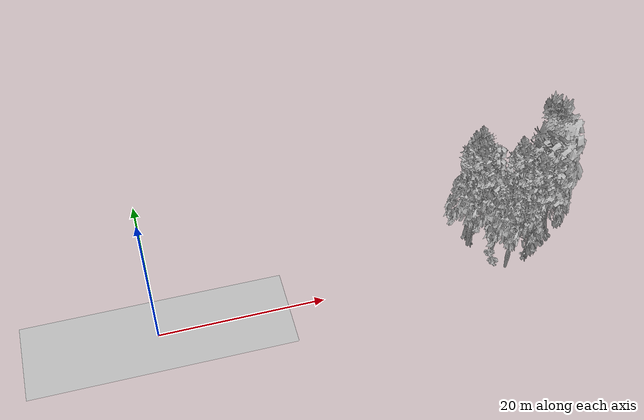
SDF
<sdf version="1.7">
 <world name="default">
  <model name="ground_plane">
   <static>1</static>
   <link name="link">
    <collision name="collision">
     <geometry><plane><normal>0 0 1</normal><size>100 100</size></plane></geometry>
     <surface><contact><ode><min_depth>0.01</min_depth><max_vel>0</max_vel></ode></contact></surface>
    </collision>
    <visual name="grass">
     <cast_shadows>0</cast_shadows>
     <geometry>
      <mesh>
       <scale>0.5814285714285714 0.18142857142857144 0.1</scale>
       <uri>file://grass_plane/meshes/grass_plane.dae</uri>
      </mesh>
     </geometry>
    </visual>
   </link>
  </model>
  <model name="Tree 13">
   <static>1</static>
   <pose>42.76853482774929 -0.8321664190316973 0 1.57079 -0 0</pose>
   <link name="link">
    <collision name="collision">
     <geometry><mesh><scale>3.5 5 3.5</scale><uri>model://tree_2/meshes/tree_2.obj</uri></mesh></geometry>
    </collision>
    <visual name="visual">
     <geometry><mesh><scale>3.5 5 3.5</scale><uri>model://tree_2/meshes/tree_2.obj</uri></mesh></geometry>
    </visual>
   </link>
  </model>
  <model name="Tree 91">
   <static>1</static>
   <pose>45.74983469619217 0.16210084638446176 0 1.57079 -0 0</pose>
   <link name="link">
    <collision name="collision">
     <geometry><mesh><scale>3.5 5 3.5</scale><uri>model://tree_9/meshes/tree_9.obj</uri></mesh></geometry>
    </collision>
    <visual name="visual">
     <geometry><mesh><scale>3.5 5 3.5</scale><uri>model://tree_9/meshes/tree_9.obj</uri></mesh></geometry>
    </visual>
   </link>
  </model>
  <model name="Tree 171">
   <static>1</static>
   <pose>47.460724381941645 2.3032544436550957 0 1.57079 -0 0</pose>
   <link name="link">
    <collision name="collision">
     <geometry><mesh><scale>3.5 5 3.5</scale><uri>model://tree_2/meshes/tree_2.obj</uri></mesh></geometry>
    </collision>
    <visual name="visual">
     <geometry><mesh><scale>3.5 5 3.5</scale><uri>model://tree_2/meshes/tree_2.obj</uri></mesh></geometry>
    </visual>
   </link>
  </model>
  <model name="Tree 210">
   <static>1</static>
   <pose>47.93590802546615 3.843932715590359 0 1.57079 -0 0</pose>
   <link name="link">
    <collision name="collision">
     <geometry><mesh><scale>3.5 5 3.5</scale><uri>model://tree_4/meshes/tree_4.obj</uri></mesh></geometry>
    </collision>
    <visual name="visual">
     <geometry><mesh><scale>3.5 5 3.5</scale><uri>model://tree_4/meshes/tree_4.obj</uri></mesh></geometry>
    </visual>
   </link>
  </model>
  <model name="Tree 217">
   <static>1</static>
   <pose>40.01650004434899 3.938948742155606 0 1.57079 -0 0</pose>
   <link name="link">
    <collision name="collision">
     <geometry><mesh><scale>3.5 5 3.5</scale><uri>model://tree_9/meshes/tree_9.obj</uri></mesh></geometry>
    </collision>
    <visual name="visual">
     <geometry><mesh><scale>3.5 5 3.5</scale><uri>model://tree_9/meshes/tree_9.obj</uri></mesh></geometry>
    </visual>
   </link>
  </model>
  <model name="Tree 292">
   <static>1</static>
   <pose>48.7159655085579 4.37660863367163 0 1.57079 -0 0</pose>
   <link name="link">
    <collision name="collision">
     <geometry><mesh><scale>3.5 5 3.5</scale><uri>model://tree_2/meshes/tree_2.obj</uri></mesh></geometry>
    </collision>
    <visual name="visual">
     <geometry><mesh><scale>3.5 5 3.5</scale><uri>model://tree_2/meshes/tree_2.obj</uri></mesh></geometry>
    </visual>
   </link>
  </model>
  <model name="Tree 318">
   <static>1</static>
   <pose>48.39314730782719 2.442720009483125 0 1.57079 -0 0</pose>
   <link name="link">
    <collision name="collision">
     <geometry><mesh><scale>3.5 5 3.5</scale><uri>model://tree_9/meshes/tree_9.obj</uri></mesh></geometry>
    </collision>
    <visual name="visual">
     <geometry><mesh><scale>3.5 5 3.5</scale><uri>model://tree_9/meshes/tree_9.obj</uri></mesh></geometry>
    </visual>
   </link>
  </model>
  <model name="Tree 320">
   <static>1</static>
   <pose>44.202582735898375 3.023458658423756 0 1.57079 -0 0</pose>
   <link name="link">
    <collision name="collision">
     <geometry><mesh><scale>3.5 5 3.5</scale><uri>model://tree_2/meshes/tree_2.obj</uri></mesh></geometry>
    </collision>
    <visual name="visual">
     <geometry><mesh><scale>3.5 5 3.5</scale><uri>model://tree_2/meshes/tree_2.obj</uri></mesh></geometry>
    </visual>
   </link>
  </model>
  <model name="Tree 342">
   <static>1</static>
   <pose>39.77234119199531 5.152164999888814 0 1.57079 -0 0</pose>
   <link name="link">
    <collision name="collision">
     <geometry><mesh><scale>3.5 5 3.5</scale><uri>model://tree_9/meshes/tree_9.obj</uri></mesh></geometry>
    </collision>
    <visual name="visual">
     <geometry><mesh><scale>3.5 5 3.5</scale><uri>model://tree_9/meshes/tree_9.obj</uri></mesh></geometry>
    </visual>
   </link>
  </model>
  <model name="Tree 375">
   <static>1</static>
   <pose>40.78762197739654 5.713616699040944 0 1.57079 -0 0</pose>
   <link name="link">
    <collision name="collision">
     <geometry><mesh><scale>3.5 5 3.5</scale><uri>model://tree_9/meshes/tree_9.obj</uri></mesh></geometry>
    </collision>
    <visual name="visual">
     <geometry><mesh><scale>3.5 5 3.5</scale><uri>model://tree_9/meshes/tree_9.obj</uri></mesh></geometry>
    </visual>
   </link>
  </model>
  <model name="Tree 389">
   <static>1</static>
   <pose>48.72109808420829 2.7950919119851605 0 1.57079 -0 0</pose>
   <link name="link">
    <collision name="collision">
     <geometry><mesh><scale>3.5 5 3.5</scale><uri>model://tree_4/meshes/tree_4.obj</uri></mesh></geometry>
    </collision>
    <visual name="visual">
     <geometry><mesh><scale>3.5 5 3.5</scale><uri>model://tree_4/meshes/tree_4.obj</uri></mesh></geometry>
    </visual>
   </link>
  </model>
  <model name="Tree 397">
   <static>1</static>
   <pose>44.63555032589552 2.98267359620964 0 1.57079 -0 0</pose>
   <link name="link">
    <collision name="collision">
     <geometry><mesh><scale>3.5 5 3.5</scale><uri>model://tree_9/meshes/tree_9.obj</uri></mesh></geometry>
    </collision>
    <visual name="visual">
     <geometry><mesh><scale>3.5 5 3.5</scale><uri>model://tree_9/meshes/tree_9.obj</uri></mesh></geometry>
    </visual>
   </link>
  </model>
  <model name="Tree 415">
   <static>1</static>
   <pose>41.93811829524718 1.7074546199882938 0 1.57079 -0 0</pose>
   <link name="link">
    <collision name="collision">
     <geometry><mesh><scale>3.5 5 3.5</scale><uri>model://tree_2/meshes/tree_2.obj</uri></mesh></geometry>
    </collision>
    <visual name="visual">
     <geometry><mesh><scale>3.5 5 3.5</scale><uri>model://tree_2/meshes/tree_2.obj</uri></mesh></geometry>
    </visual>
   </link>
  </model>
  <model name="Tree 416">
   <static>1</static>
   <pose>39.43667003730445 3.553505413497472 0 1.57079 -0 0</pose>
   <link name="link">
    <collision name="collision">
     <geometry><mesh><scale>3.5 5 3.5</scale><uri>model://tree_2/meshes/tree_2.obj</uri></mesh></geometry>
    </collision>
    <visual name="visual">
     <geometry><mesh><scale>3.5 5 3.5</scale><uri>model://tree_2/meshes/tree_2.obj</uri></mesh></geometry>
    </visual>
   </link>
  </model>
  <model name="Bush 34">
   <static>1</static>
   <pose>47.93569680505422 6.542717763182772 0 1.57079 -0 0</pose>
   <link name="link">
    <collision name="collision">
     <geometry><mesh><scale>2 2 2</scale><uri>model://bush_3/meshes/bush_3.obj</uri></mesh></geometry>
     <surface><contact><collide_without_contact>false</collide_without_contact></contact></surface>
    </collision>
    <visual name="visual">
     <geometry><mesh><scale>2 2 2</scale><uri>model://bush_3/meshes/bush_3.obj</uri></mesh></geometry>
    </visual>
   </link>
  </model>
  <model name="Bush 85">
   <static>1</static>
   <pose>44.86096725553533 2.3821274196672633 0 1.57079 -0 0</pose>
   <link name="link">
    <collision name="collision">
     <geometry><mesh><scale>2 2 2</scale><uri>model://bush_2/meshes/bush_2.obj</uri></mesh></geometry>
     <surface><contact><collide_without_contact>false</collide_without_contact></contact></surface>
    </collision>
    <visual name="visual">
     <geometry><mesh><scale>2 2 2</scale><uri>model://bush_2/meshes/bush_2.obj</uri></mesh></geometry>
    </visual>
   </link>
  </model>
  <model name="Bush 180">
   <static>1</static>
   <pose>45.28365896410048 3.747763338758361 0 1.57079 -0 0</pose>
   <link name="link">
    <collision name="collision">
     <geometry><mesh><scale>2 2 2</scale><uri>model://bush_1/meshes/bush_1.obj</uri></mesh></geometry>
     <surface><contact><collide_without_contact>false</collide_without_contact></contact></surface>
    </collision>
    <visual name="visual">
     <geometry><mesh><scale>2 2 2</scale><uri>model://bush_1/meshes/bush_1.obj</uri></mesh></geometry>
    </visual>
   </link>
  </model>
  <model name="Bush 206">
   <static>1</static>
   <pose>45.73654996672805 -0.043809939123271135 0 1.57079 -0 0</pose>
   <link name="link">
    <collision name="collision">
     <geometry><mesh><scale>2 2 2</scale><uri>model://bush_4/meshes/bush_4.obj</uri></mesh></geometry>
     <surface><contact><collide_without_contact>false</collide_without_contact></contact></surface>
    </collision>
    <visual name="visual">
     <geometry><mesh><scale>2 2 2</scale><uri>model://bush_4/meshes/bush_4.obj</uri></mesh></geometry>
    </visual>
   </link>
  </model>
  <model name="Bush 207">
   <static>1</static>
   <pose>47.065607832382625 4.4586499560191015 0 1.57079 -0 0</pose>
   <link name="link">
    <collision name="collision">
     <geometry><mesh><scale>2 2 2</scale><uri>model://bush_4/meshes/bush_4.obj</uri></mesh></geometry>
     <surface><contact><collide_without_contact>false</collide_without_contact></contact></surface>
    </collision>
    <visual name="visual">
     <geometry><mesh><scale>2 2 2</scale><uri>model://bush_4/meshes/bush_4.obj</uri></mesh></geometry>
    </visual>
   </link>
  </model>
  <model name="Bush 215">
   <static>1</static>
   <pose>41.64298510892573 1.3742917329014759 0 1.57079 -0 0</pose>
   <link name="link">
    <collision name="collision">
     <geometry><mesh><scale>2 2 2</scale><uri>model://bush_3/meshes/bush_3.obj</uri></mesh></geometry>
     <surface><contact><collide_without_contact>false</collide_without_contact></contact></surface>
    </collision>
    <visual name="visual">
     <geometry><mesh><scale>2 2 2</scale><uri>model://bush_3/meshes/bush_3.obj</uri></mesh></geometry>
    </visual>
   </link>
  </model>
  <model name="Bush 227">
   <static>1</static>
   <pose>40.94455236050223 4.946921970714044 0 1.57079 -0 0</pose>
   <link name="link">
    <collision name="collision">
     <geometry><mesh><scale>2 2 2</scale><uri>model://bush_0/meshes/bush_0.obj</uri></mesh></geometry>
     <surface><contact><collide_without_contact>false</collide_without_contact></contact></surface>
    </collision>
    <visual name="visual">
     <geometry><mesh><scale>2 2 2</scale><uri>model://bush_0/meshes/bush_0.obj</uri></mesh></geometry>
    </visual>
   </link>
  </model>
  <model name="Bush 334">
   <static>1</static>
   <pose>41.572550287252 0.06341779691522476 0 1.57079 -0 0</pose>
   <link name="link">
    <collision name="collision">
     <geometry><mesh><scale>2 2 2</scale><uri>model://bush_3/meshes/bush_3.obj</uri></mesh></geometry>
     <surface><contact><collide_without_contact>false</collide_without_contact></contact></surface>
    </collision>
    <visual name="visual">
     <geometry><mesh><scale>2 2 2</scale><uri>model://bush_3/meshes/bush_3.obj</uri></mesh></geometry>
    </visual>
   </link>
  </model>
 </world>
</sdf>
